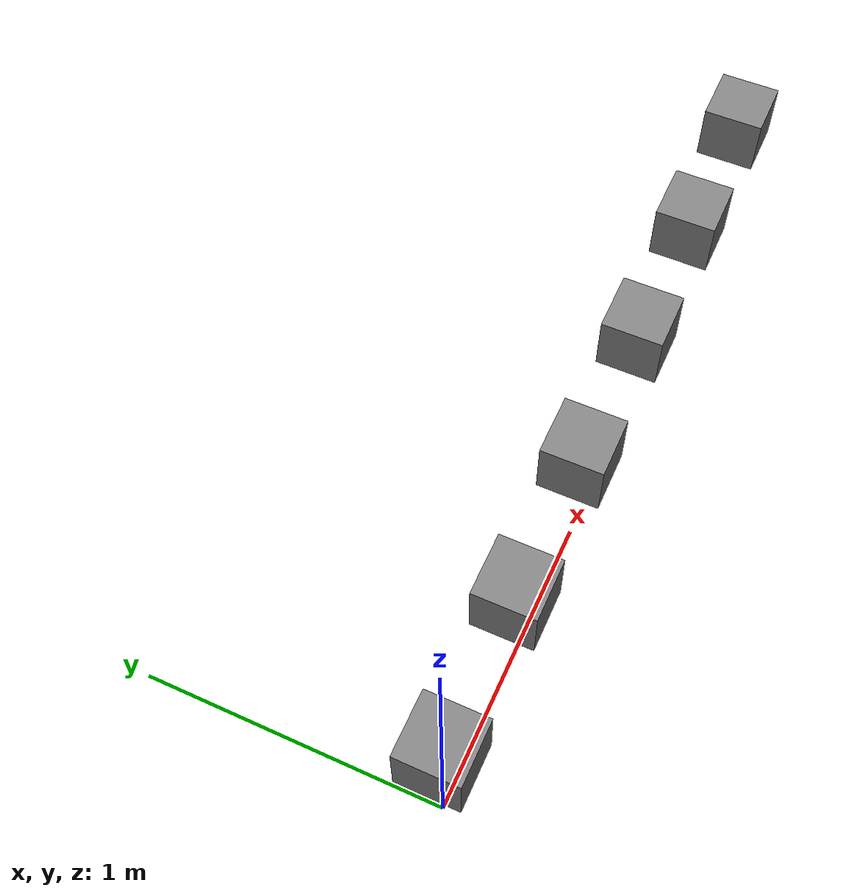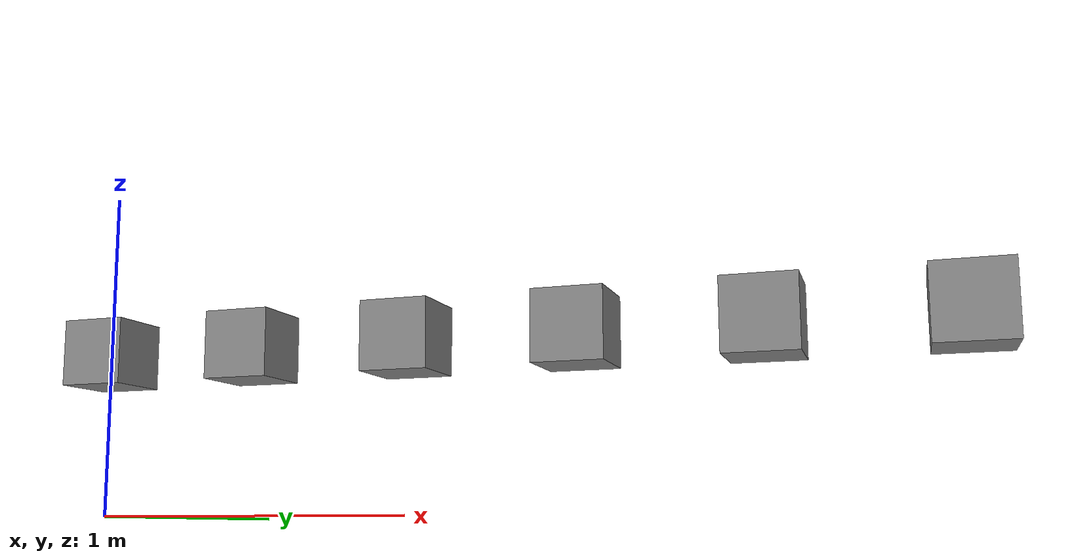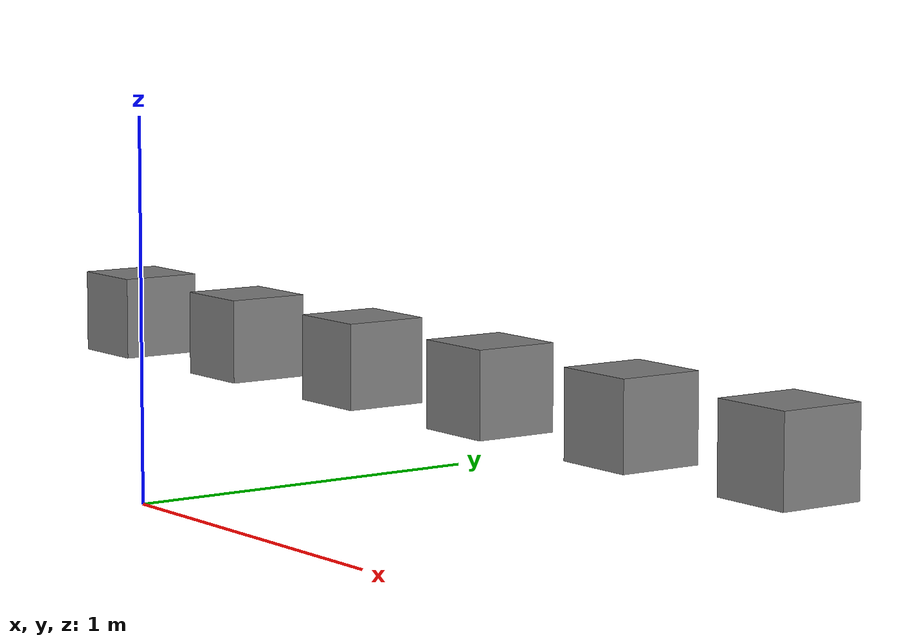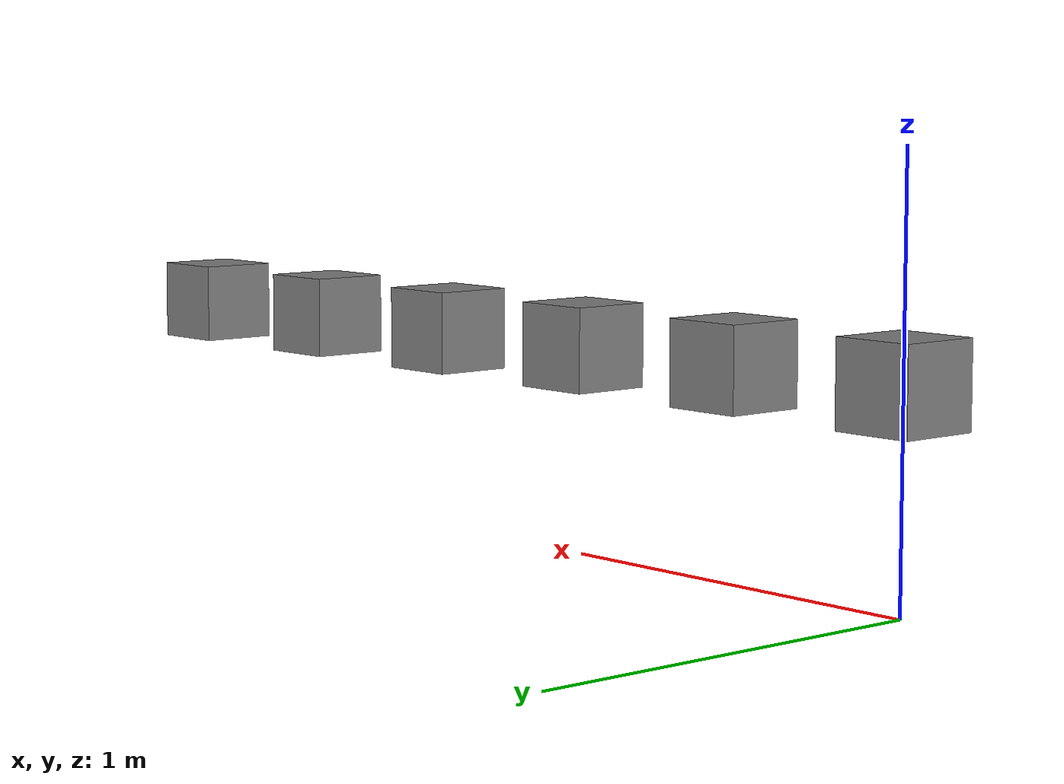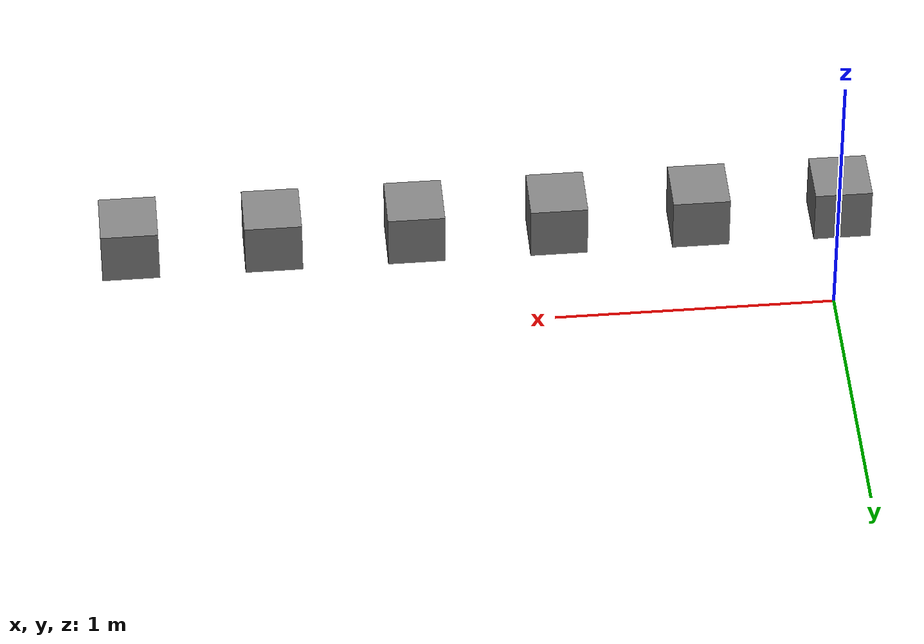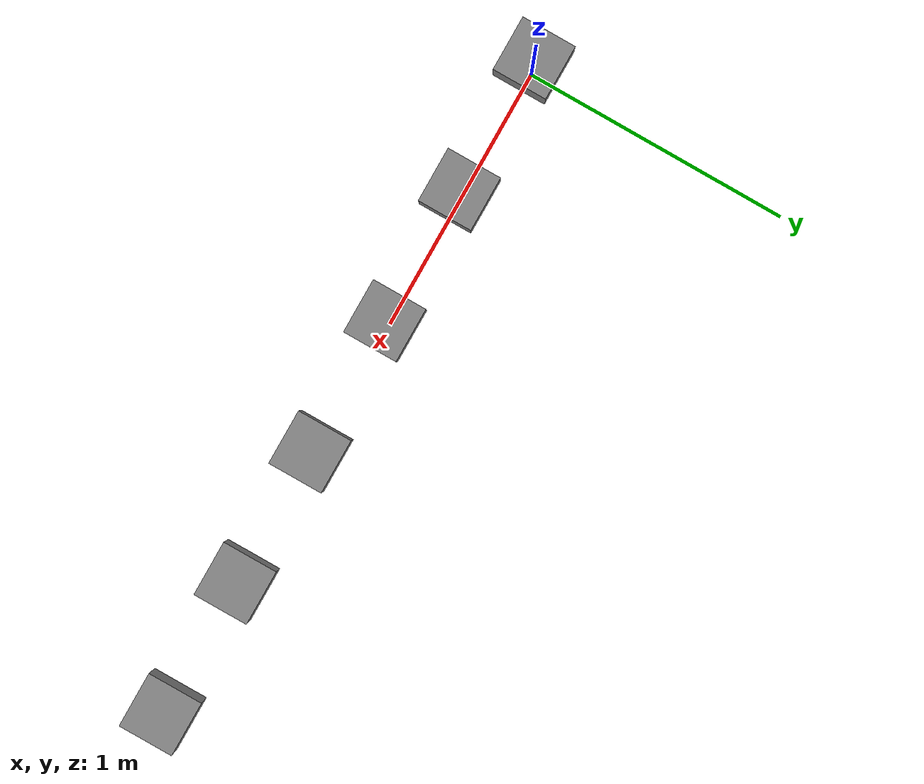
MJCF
<mujoco model="equality_weld_attributes">
  <worldbody>
    <body name="body0" pos="0 0 0.5">
      <geom type="box" size="0.1 0.1 0.1"/>
      <freejoint/>
    </body>
    <body name="body1" pos="0.5 0 0.5">
      <geom type="box" size="0.1 0.1 0.1"/>
      <freejoint/>
    </body>
    <body name="body2" pos="1 0 0.5">
      <geom type="box" size="0.1 0.1 0.1"/>
      <freejoint/>
    </body>
    <body name="body3" pos="1.5 0 0.5">
      <geom type="box" size="0.1 0.1 0.1"/>
      <freejoint/>
    </body>
    <body name="body4" pos="2 0 0.5">
      <geom type="box" size="0.1 0.1 0.1"/>
      <site name="site4" pos="0.05 0 0"/>
      <freejoint/>
    </body>
    <body name="body5" pos="2.5 0 0.5">
      <geom type="box" size="0.1 0.1 0.1"/>
      <site name="site5" pos="-0.05 0 0"/>
      <freejoint/>
    </body>
  </worldbody>
  <equality>
    <!-- Custom weld with non-default values -->
    <weld name="custom-weld"
          body1="body0"
          body2="body1"
          solimp="0.8 0.9 0.002 0.6 3"
          solref="0.03 0.8"
          torquescale="2.5"/>
    <!-- Default weld with default values -->
    <weld name="default_weld"
          body1="body2"
          body2="body3"
          solimp="0.9 0.95 0.001 0.5 2"
          solref="0.02 1"
          torquescale="1"/>
    <!-- Site-based weld with non-default values -->
    <weld name="site_weld"
          site1="site4"
          site2="site5"
          solimp="0.75 0.85 0.004 0.55 2.5"
          solref="0.025 0.9"
          torquescale="1.5"/>
    <!-- Weld with only body1: body2 defaults to world (default prim in USD) -->
    <weld name="weld_to_world"
          body1="body0"/>
    <!-- Disabled weld: active="false" → physics:jointEnabled should be authored and false -->
    <weld body1="body2"
          body2="body3"
          active="false"/>
  </equality>
</mujoco>
